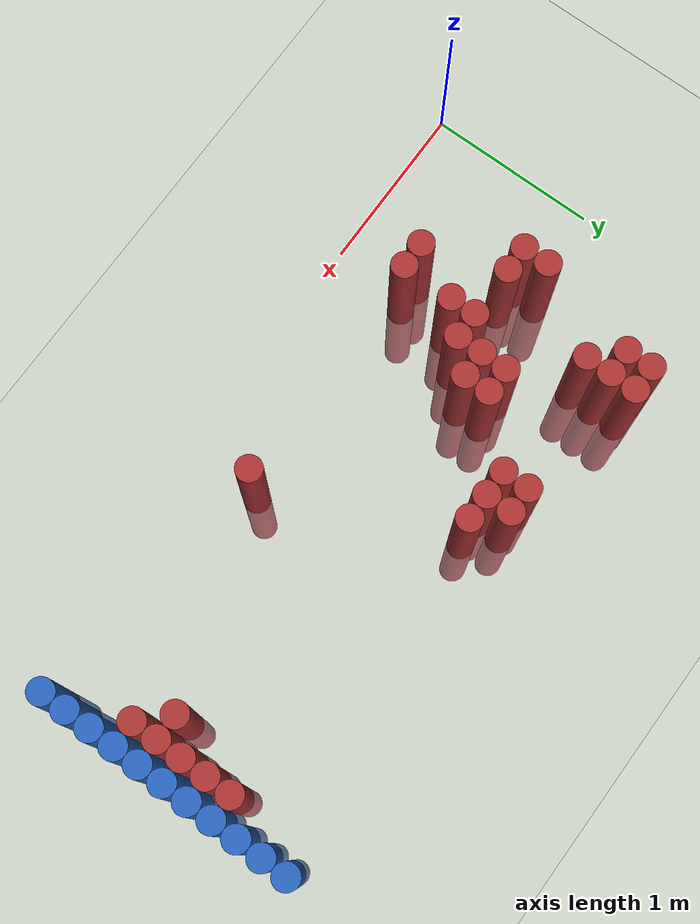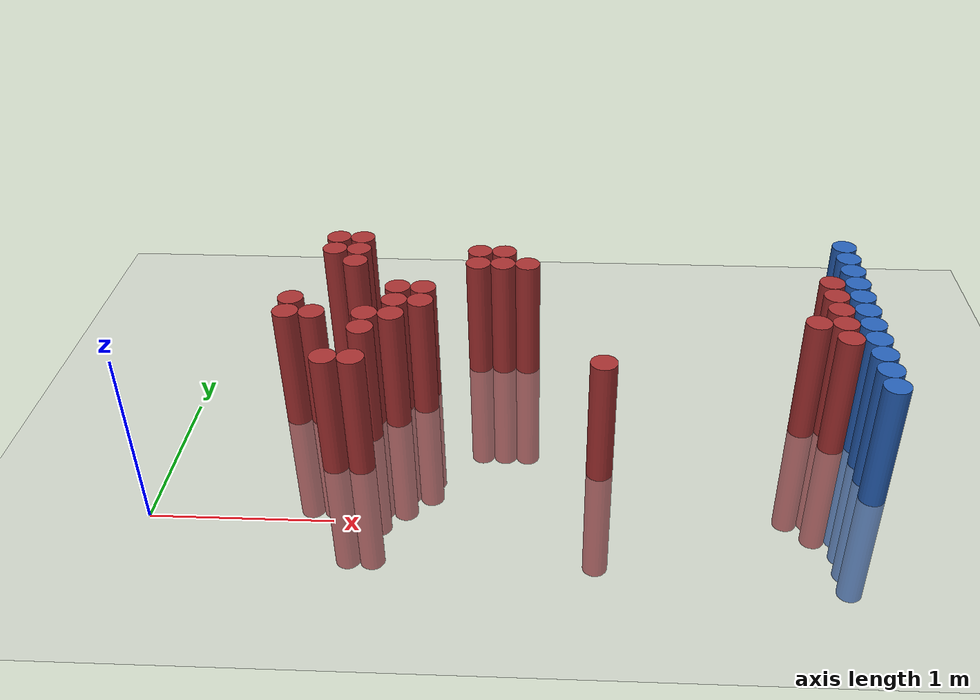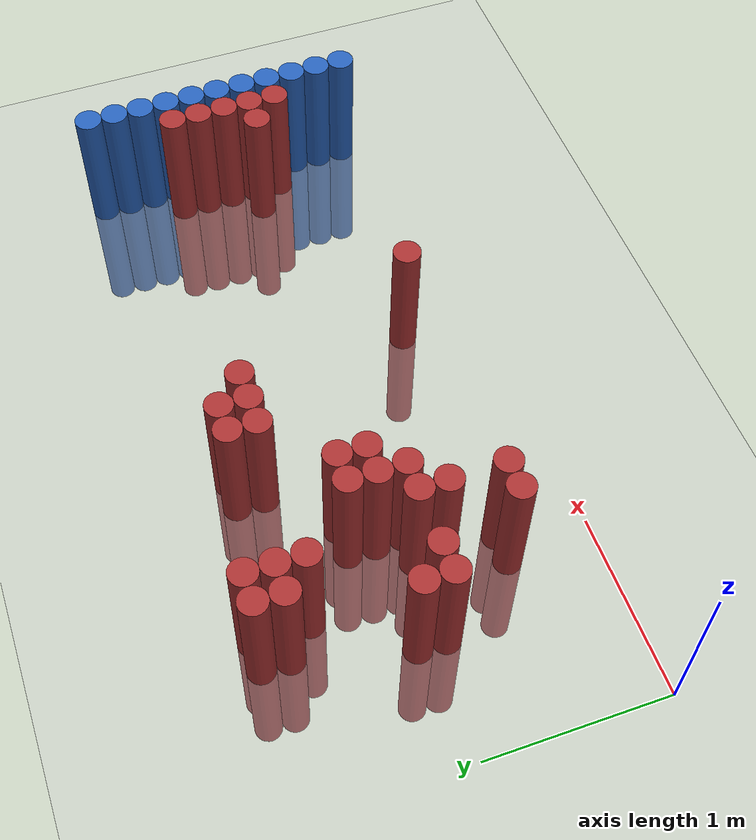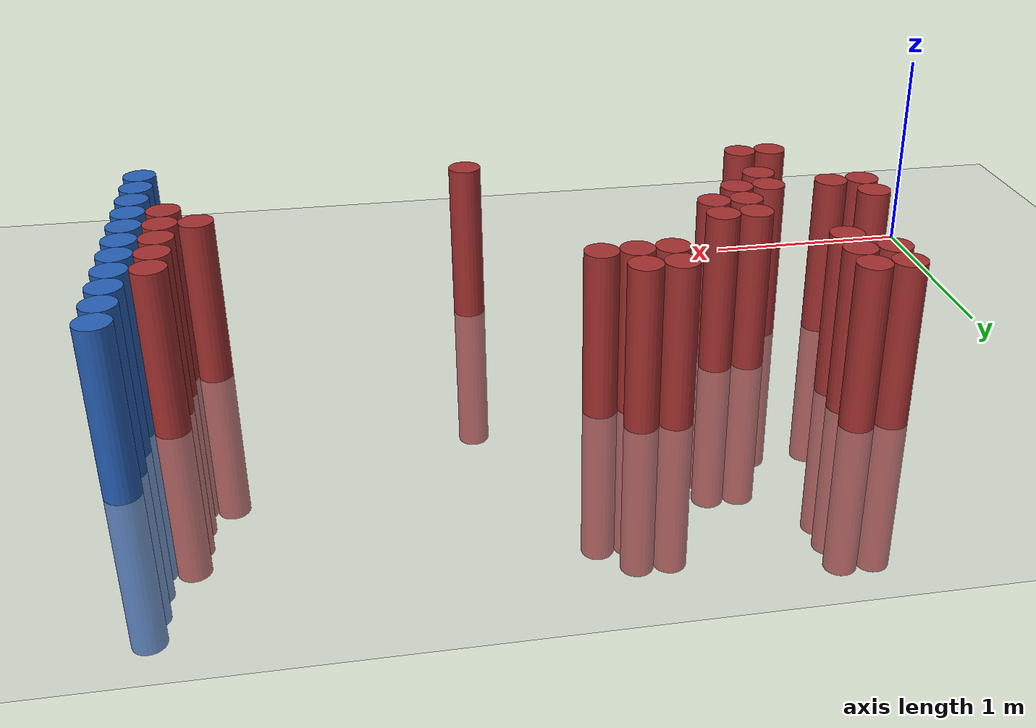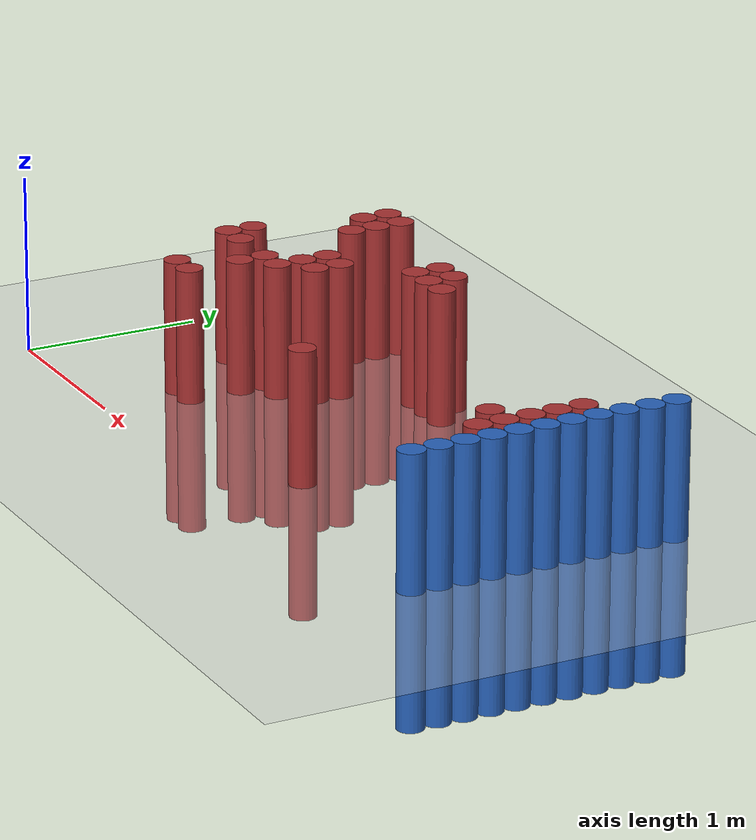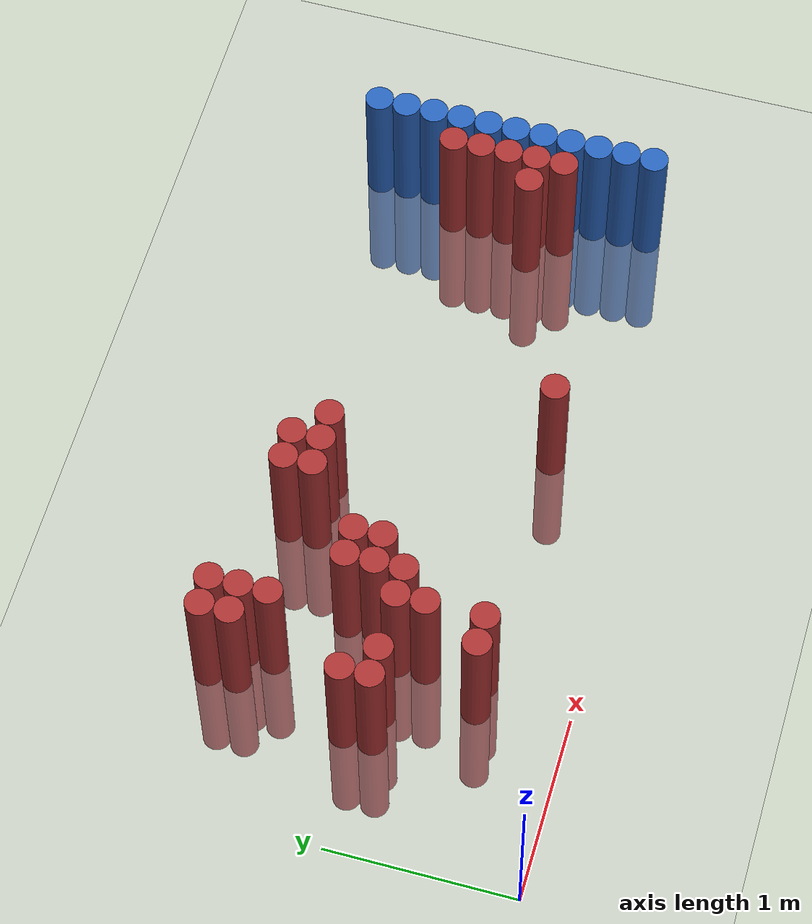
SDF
<sdf version="1.6">
 <world name="default">
  <model name="ground_plane">
   <static>1</static>
   <link name="link">
    <collision name="collision">
     <geometry><plane><normal>0 0 1</normal><size>100 100</size></plane></geometry>
     <surface><friction><ode><mu>100</mu><mu2>50</mu2></ode></friction></surface>
    </collision>
    <visual name="visual">
     <cast_shadows>0</cast_shadows>
     <geometry><plane><normal>0 0 1</normal><size>100 100</size></plane></geometry>
     <material>
      <script><uri>file://media/materials/scripts/gazebo.material</uri><name>Gazebo/Grey</name></script>
     </material>
    </visual>
   </link>
  </model>
  <model name="unit_cylinder_120">
   <static>1</static>
   <pose>3.925000 0.475000 0.000000 0.000000 0.000000 0.000000</pose>
   <link name="link">
    <inertial>
     <mass>1</mass>
     <inertia><ixx>0.145833</ixx><ixy>0</ixy><ixz>0</ixz><iyy>0.145833</iyy><iyz>0</iyz><izz>0.125</izz></inertia>
    </inertial>
    <collision name="collision">
     <geometry><cylinder><radius>0.075000</radius><length>1.5</length></cylinder></geometry>
    </collision>
    <visual name="visual">
     <geometry><cylinder><radius>0.075000</radius><length>1.5</length></cylinder></geometry>
     <material>
      <ambient>0.152000 0.379000 0.720000 1</ambient>
      <diffuse>0.152000 0.379000 0.720000 1</diffuse>
     </material>
     <material>
      <script><name>Gazebo/Grey</name><uri>file://media/materials/scripts/gazebo.material</uri></script>
     </material>
    </visual>
   </link>
  </model>
  <model name="unit_cylinder_122">
   <static>1</static>
   <pose>3.925000 0.625000 0.000000 0.000000 0.000000 0.000000</pose>
   <link name="link">
    <inertial>
     <mass>1</mass>
     <inertia><ixx>0.145833</ixx><ixy>0</ixy><ixz>0</ixz><iyy>0.145833</iyy><iyz>0</iyz><izz>0.125</izz></inertia>
    </inertial>
    <collision name="collision">
     <geometry><cylinder><radius>0.075000</radius><length>1.5</length></cylinder></geometry>
    </collision>
    <visual name="visual">
     <geometry><cylinder><radius>0.075000</radius><length>1.5</length></cylinder></geometry>
     <material>
      <ambient>0.152000 0.379000 0.720000 1</ambient>
      <diffuse>0.152000 0.379000 0.720000 1</diffuse>
     </material>
     <material>
      <script><name>Gazebo/Grey</name><uri>file://media/materials/scripts/gazebo.material</uri></script>
     </material>
    </visual>
   </link>
  </model>
  <model name="unit_cylinder_124">
   <static>1</static>
   <pose>3.925000 0.775000 0.000000 0.000000 0.000000 0.000000</pose>
   <link name="link">
    <inertial>
     <mass>1</mass>
     <inertia><ixx>0.145833</ixx><ixy>0</ixy><ixz>0</ixz><iyy>0.145833</iyy><iyz>0</iyz><izz>0.125</izz></inertia>
    </inertial>
    <collision name="collision">
     <geometry><cylinder><radius>0.075000</radius><length>1.5</length></cylinder></geometry>
    </collision>
    <visual name="visual">
     <geometry><cylinder><radius>0.075000</radius><length>1.5</length></cylinder></geometry>
     <material>
      <ambient>0.152000 0.379000 0.720000 1</ambient>
      <diffuse>0.152000 0.379000 0.720000 1</diffuse>
     </material>
     <material>
      <script><name>Gazebo/Grey</name><uri>file://media/materials/scripts/gazebo.material</uri></script>
     </material>
    </visual>
   </link>
  </model>
  <model name="unit_cylinder_126">
   <static>1</static>
   <pose>3.925000 0.925000 0.000000 0.000000 0.000000 0.000000</pose>
   <link name="link">
    <inertial>
     <mass>1</mass>
     <inertia><ixx>0.145833</ixx><ixy>0</ixy><ixz>0</ixz><iyy>0.145833</iyy><iyz>0</iyz><izz>0.125</izz></inertia>
    </inertial>
    <collision name="collision">
     <geometry><cylinder><radius>0.075000</radius><length>1.5</length></cylinder></geometry>
    </collision>
    <visual name="visual">
     <geometry><cylinder><radius>0.075000</radius><length>1.5</length></cylinder></geometry>
     <material>
      <ambient>0.152000 0.379000 0.720000 1</ambient>
      <diffuse>0.152000 0.379000 0.720000 1</diffuse>
     </material>
     <material>
      <script><name>Gazebo/Grey</name><uri>file://media/materials/scripts/gazebo.material</uri></script>
     </material>
    </visual>
   </link>
  </model>
  <model name="unit_cylinder_128">
   <static>1</static>
   <pose>3.925000 1.075000 0.000000 0.000000 0.000000 0.000000</pose>
   <link name="link">
    <inertial>
     <mass>1</mass>
     <inertia><ixx>0.145833</ixx><ixy>0</ixy><ixz>0</ixz><iyy>0.145833</iyy><iyz>0</iyz><izz>0.125</izz></inertia>
    </inertial>
    <collision name="collision">
     <geometry><cylinder><radius>0.075000</radius><length>1.5</length></cylinder></geometry>
    </collision>
    <visual name="visual">
     <geometry><cylinder><radius>0.075000</radius><length>1.5</length></cylinder></geometry>
     <material>
      <ambient>0.152000 0.379000 0.720000 1</ambient>
      <diffuse>0.152000 0.379000 0.720000 1</diffuse>
     </material>
     <material>
      <script><name>Gazebo/Grey</name><uri>file://media/materials/scripts/gazebo.material</uri></script>
     </material>
    </visual>
   </link>
  </model>
  <model name="unit_cylinder_130">
   <static>1</static>
   <pose>3.925000 1.225000 0.000000 0.000000 0.000000 0.000000</pose>
   <link name="link">
    <inertial>
     <mass>1</mass>
     <inertia><ixx>0.145833</ixx><ixy>0</ixy><ixz>0</ixz><iyy>0.145833</iyy><iyz>0</iyz><izz>0.125</izz></inertia>
    </inertial>
    <collision name="collision">
     <geometry><cylinder><radius>0.075000</radius><length>1.5</length></cylinder></geometry>
    </collision>
    <visual name="visual">
     <geometry><cylinder><radius>0.075000</radius><length>1.5</length></cylinder></geometry>
     <material>
      <ambient>0.152000 0.379000 0.720000 1</ambient>
      <diffuse>0.152000 0.379000 0.720000 1</diffuse>
     </material>
     <material>
      <script><name>Gazebo/Grey</name><uri>file://media/materials/scripts/gazebo.material</uri></script>
     </material>
    </visual>
   </link>
  </model>
  <model name="unit_cylinder_132">
   <static>1</static>
   <pose>3.925000 1.375000 0.000000 0.000000 0.000000 0.000000</pose>
   <link name="link">
    <inertial>
     <mass>1</mass>
     <inertia><ixx>0.145833</ixx><ixy>0</ixy><ixz>0</ixz><iyy>0.145833</iyy><iyz>0</iyz><izz>0.125</izz></inertia>
    </inertial>
    <collision name="collision">
     <geometry><cylinder><radius>0.075000</radius><length>1.5</length></cylinder></geometry>
    </collision>
    <visual name="visual">
     <geometry><cylinder><radius>0.075000</radius><length>1.5</length></cylinder></geometry>
     <material>
      <ambient>0.152000 0.379000 0.720000 1</ambient>
      <diffuse>0.152000 0.379000 0.720000 1</diffuse>
     </material>
     <material>
      <script><name>Gazebo/Grey</name><uri>file://media/materials/scripts/gazebo.material</uri></script>
     </material>
    </visual>
   </link>
  </model>
  <model name="unit_cylinder_134">
   <static>1</static>
   <pose>3.925000 1.525000 0.000000 0.000000 0.000000 0.000000</pose>
   <link name="link">
    <inertial>
     <mass>1</mass>
     <inertia><ixx>0.145833</ixx><ixy>0</ixy><ixz>0</ixz><iyy>0.145833</iyy><iyz>0</iyz><izz>0.125</izz></inertia>
    </inertial>
    <collision name="collision">
     <geometry><cylinder><radius>0.075000</radius><length>1.5</length></cylinder></geometry>
    </collision>
    <visual name="visual">
     <geometry><cylinder><radius>0.075000</radius><length>1.5</length></cylinder></geometry>
     <material>
      <ambient>0.152000 0.379000 0.720000 1</ambient>
      <diffuse>0.152000 0.379000 0.720000 1</diffuse>
     </material>
     <material>
      <script><name>Gazebo/Grey</name><uri>file://media/materials/scripts/gazebo.material</uri></script>
     </material>
    </visual>
   </link>
  </model>
  <model name="unit_cylinder_136">
   <static>1</static>
   <pose>3.925000 1.675000 0.000000 0.000000 0.000000 0.000000</pose>
   <link name="link">
    <inertial>
     <mass>1</mass>
     <inertia><ixx>0.145833</ixx><ixy>0</ixy><ixz>0</ixz><iyy>0.145833</iyy><iyz>0</iyz><izz>0.125</izz></inertia>
    </inertial>
    <collision name="collision">
     <geometry><cylinder><radius>0.075000</radius><length>1.5</length></cylinder></geometry>
    </collision>
    <visual name="visual">
     <geometry><cylinder><radius>0.075000</radius><length>1.5</length></cylinder></geometry>
     <material>
      <ambient>0.152000 0.379000 0.720000 1</ambient>
      <diffuse>0.152000 0.379000 0.720000 1</diffuse>
     </material>
     <material>
      <script><name>Gazebo/Grey</name><uri>file://media/materials/scripts/gazebo.material</uri></script>
     </material>
    </visual>
   </link>
  </model>
  <model name="unit_cylinder_138">
   <static>1</static>
   <pose>3.925000 1.825000 0.000000 0.000000 0.000000 0.000000</pose>
   <link name="link">
    <inertial>
     <mass>1</mass>
     <inertia><ixx>0.145833</ixx><ixy>0</ixy><ixz>0</ixz><iyy>0.145833</iyy><iyz>0</iyz><izz>0.125</izz></inertia>
    </inertial>
    <collision name="collision">
     <geometry><cylinder><radius>0.075000</radius><length>1.5</length></cylinder></geometry>
    </collision>
    <visual name="visual">
     <geometry><cylinder><radius>0.075000</radius><length>1.5</length></cylinder></geometry>
     <material>
      <ambient>0.152000 0.379000 0.720000 1</ambient>
      <diffuse>0.152000 0.379000 0.720000 1</diffuse>
     </material>
     <material>
      <script><name>Gazebo/Grey</name><uri>file://media/materials/scripts/gazebo.material</uri></script>
     </material>
    </visual>
   </link>
  </model>
  <model name="unit_cylinder_311">
   <static>1</static>
   <pose>0.625000 0.925000 0.000000 0.000000 0.000000 0.000000</pose>
   <link name="link">
    <inertial>
     <mass>1</mass>
     <inertia><ixx>0.145833</ixx><ixy>0</ixy><ixz>0</ixz><iyy>0.145833</iyy><iyz>0</iyz><izz>0.125</izz></inertia>
    </inertial>
    <collision name="collision">
     <geometry><cylinder><radius>0.075000</radius><length>1.5</length></cylinder></geometry>
    </collision>
    <visual name="visual">
     <geometry><cylinder><radius>0.075000</radius><length>1.5</length></cylinder></geometry>
     <material>
      <ambient>0.648000 0.192000 0.192000 1</ambient>
      <diffuse>0.648000 0.192000 0.192000 1</diffuse>
     </material>
     <material>
      <script><name>Gazebo/Grey</name><uri>file://media/materials/scripts/gazebo.material</uri></script>
     </material>
    </visual>
   </link>
  </model>
  <model name="unit_cylinder_312">
   <static>1</static>
   <pose>0.625000 1.075000 0.000000 0.000000 0.000000 0.000000</pose>
   <link name="link">
    <inertial>
     <mass>1</mass>
     <inertia><ixx>0.145833</ixx><ixy>0</ixy><ixz>0</ixz><iyy>0.145833</iyy><iyz>0</iyz><izz>0.125</izz></inertia>
    </inertial>
    <collision name="collision">
     <geometry><cylinder><radius>0.075000</radius><length>1.5</length></cylinder></geometry>
    </collision>
    <visual name="visual">
     <geometry><cylinder><radius>0.075000</radius><length>1.5</length></cylinder></geometry>
     <material>
      <ambient>0.648000 0.192000 0.192000 1</ambient>
      <diffuse>0.648000 0.192000 0.192000 1</diffuse>
     </material>
     <material>
      <script><name>Gazebo/Grey</name><uri>file://media/materials/scripts/gazebo.material</uri></script>
     </material>
    </visual>
   </link>
  </model>
  <model name="unit_cylinder_314">
   <static>1</static>
   <pose>0.775000 0.925000 0.000000 0.000000 0.000000 0.000000</pose>
   <link name="link">
    <inertial>
     <mass>1</mass>
     <inertia><ixx>0.145833</ixx><ixy>0</ixy><ixz>0</ixz><iyy>0.145833</iyy><iyz>0</iyz><izz>0.125</izz></inertia>
    </inertial>
    <collision name="collision">
     <geometry><cylinder><radius>0.075000</radius><length>1.5</length></cylinder></geometry>
    </collision>
    <visual name="visual">
     <geometry><cylinder><radius>0.075000</radius><length>1.5</length></cylinder></geometry>
     <material>
      <ambient>0.648000 0.192000 0.192000 1</ambient>
      <diffuse>0.648000 0.192000 0.192000 1</diffuse>
     </material>
     <material>
      <script><name>Gazebo/Grey</name><uri>file://media/materials/scripts/gazebo.material</uri></script>
     </material>
    </visual>
   </link>
  </model>
  <model name="unit_cylinder_315">
   <static>1</static>
   <pose>0.775000 1.675000 0.000000 0.000000 0.000000 0.000000</pose>
   <link name="link">
    <inertial>
     <mass>1</mass>
     <inertia><ixx>0.145833</ixx><ixy>0</ixy><ixz>0</ixz><iyy>0.145833</iyy><iyz>0</iyz><izz>0.125</izz></inertia>
    </inertial>
    <collision name="collision">
     <geometry><cylinder><radius>0.075000</radius><length>1.5</length></cylinder></geometry>
    </collision>
    <visual name="visual">
     <geometry><cylinder><radius>0.075000</radius><length>1.5</length></cylinder></geometry>
     <material>
      <ambient>0.648000 0.192000 0.192000 1</ambient>
      <diffuse>0.648000 0.192000 0.192000 1</diffuse>
     </material>
     <material>
      <script><name>Gazebo/Grey</name><uri>file://media/materials/scripts/gazebo.material</uri></script>
     </material>
    </visual>
   </link>
  </model>
  <model name="unit_cylinder_316">
   <static>1</static>
   <pose>0.775000 1.825000 0.000000 0.000000 0.000000 0.000000</pose>
   <link name="link">
    <inertial>
     <mass>1</mass>
     <inertia><ixx>0.145833</ixx><ixy>0</ixy><ixz>0</ixz><iyy>0.145833</iyy><iyz>0</iyz><izz>0.125</izz></inertia>
    </inertial>
    <collision name="collision">
     <geometry><cylinder><radius>0.075000</radius><length>1.5</length></cylinder></geometry>
    </collision>
    <visual name="visual">
     <geometry><cylinder><radius>0.075000</radius><length>1.5</length></cylinder></geometry>
     <material>
      <ambient>0.648000 0.192000 0.192000 1</ambient>
      <diffuse>0.648000 0.192000 0.192000 1</diffuse>
     </material>
     <material>
      <script><name>Gazebo/Grey</name><uri>file://media/materials/scripts/gazebo.material</uri></script>
     </material>
    </visual>
   </link>
  </model>
  <model name="unit_cylinder_320">
   <static>1</static>
   <pose>0.925000 0.475000 0.000000 0.000000 0.000000 0.000000</pose>
   <link name="link">
    <inertial>
     <mass>1</mass>
     <inertia><ixx>0.145833</ixx><ixy>0</ixy><ixz>0</ixz><iyy>0.145833</iyy><iyz>0</iyz><izz>0.125</izz></inertia>
    </inertial>
    <collision name="collision">
     <geometry><cylinder><radius>0.075000</radius><length>1.5</length></cylinder></geometry>
    </collision>
    <visual name="visual">
     <geometry><cylinder><radius>0.075000</radius><length>1.5</length></cylinder></geometry>
     <material>
      <ambient>0.648000 0.192000 0.192000 1</ambient>
      <diffuse>0.648000 0.192000 0.192000 1</diffuse>
     </material>
     <material>
      <script><name>Gazebo/Grey</name><uri>file://media/materials/scripts/gazebo.material</uri></script>
     </material>
    </visual>
   </link>
  </model>
  <model name="unit_cylinder_321">
   <static>1</static>
   <pose>0.925000 1.525000 0.000000 0.000000 0.000000 0.000000</pose>
   <link name="link">
    <inertial>
     <mass>1</mass>
     <inertia><ixx>0.145833</ixx><ixy>0</ixy><ixz>0</ixz><iyy>0.145833</iyy><iyz>0</iyz><izz>0.125</izz></inertia>
    </inertial>
    <collision name="collision">
     <geometry><cylinder><radius>0.075000</radius><length>1.5</length></cylinder></geometry>
    </collision>
    <visual name="visual">
     <geometry><cylinder><radius>0.075000</radius><length>1.5</length></cylinder></geometry>
     <material>
      <ambient>0.648000 0.192000 0.192000 1</ambient>
      <diffuse>0.648000 0.192000 0.192000 1</diffuse>
     </material>
     <material>
      <script><name>Gazebo/Grey</name><uri>file://media/materials/scripts/gazebo.material</uri></script>
     </material>
    </visual>
   </link>
  </model>
  <model name="unit_cylinder_322">
   <static>1</static>
   <pose>0.925000 1.675000 0.000000 0.000000 0.000000 0.000000</pose>
   <link name="link">
    <inertial>
     <mass>1</mass>
     <inertia><ixx>0.145833</ixx><ixy>0</ixy><ixz>0</ixz><iyy>0.145833</iyy><iyz>0</iyz><izz>0.125</izz></inertia>
    </inertial>
    <collision name="collision">
     <geometry><cylinder><radius>0.075000</radius><length>1.5</length></cylinder></geometry>
    </collision>
    <visual name="visual">
     <geometry><cylinder><radius>0.075000</radius><length>1.5</length></cylinder></geometry>
     <material>
      <ambient>0.648000 0.192000 0.192000 1</ambient>
      <diffuse>0.648000 0.192000 0.192000 1</diffuse>
     </material>
     <material>
      <script><name>Gazebo/Grey</name><uri>file://media/materials/scripts/gazebo.material</uri></script>
     </material>
    </visual>
   </link>
  </model>
  <model name="unit_cylinder_323">
   <static>1</static>
   <pose>0.925000 1.825000 0.000000 0.000000 0.000000 0.000000</pose>
   <link name="link">
    <inertial>
     <mass>1</mass>
     <inertia><ixx>0.145833</ixx><ixy>0</ixy><ixz>0</ixz><iyy>0.145833</iyy><iyz>0</iyz><izz>0.125</izz></inertia>
    </inertial>
    <collision name="collision">
     <geometry><cylinder><radius>0.075000</radius><length>1.5</length></cylinder></geometry>
    </collision>
    <visual name="visual">
     <geometry><cylinder><radius>0.075000</radius><length>1.5</length></cylinder></geometry>
     <material>
      <ambient>0.648000 0.192000 0.192000 1</ambient>
      <diffuse>0.648000 0.192000 0.192000 1</diffuse>
     </material>
     <material>
      <script><name>Gazebo/Grey</name><uri>file://media/materials/scripts/gazebo.material</uri></script>
     </material>
    </visual>
   </link>
  </model>
  <model name="unit_cylinder_325">
   <static>1</static>
   <pose>1.075000 0.475000 0.000000 0.000000 0.000000 0.000000</pose>
   <link name="link">
    <inertial>
     <mass>1</mass>
     <inertia><ixx>0.145833</ixx><ixy>0</ixy><ixz>0</ixz><iyy>0.145833</iyy><iyz>0</iyz><izz>0.125</izz></inertia>
    </inertial>
    <collision name="collision">
     <geometry><cylinder><radius>0.075000</radius><length>1.5</length></cylinder></geometry>
    </collision>
    <visual name="visual">
     <geometry><cylinder><radius>0.075000</radius><length>1.5</length></cylinder></geometry>
     <material>
      <ambient>0.648000 0.192000 0.192000 1</ambient>
      <diffuse>0.648000 0.192000 0.192000 1</diffuse>
     </material>
     <material>
      <script><name>Gazebo/Grey</name><uri>file://media/materials/scripts/gazebo.material</uri></script>
     </material>
    </visual>
   </link>
  </model>
  <model name="unit_cylinder_326">
   <static>1</static>
   <pose>1.075000 0.775000 0.000000 0.000000 0.000000 0.000000</pose>
   <link name="link">
    <inertial>
     <mass>1</mass>
     <inertia><ixx>0.145833</ixx><ixy>0</ixy><ixz>0</ixz><iyy>0.145833</iyy><iyz>0</iyz><izz>0.125</izz></inertia>
    </inertial>
    <collision name="collision">
     <geometry><cylinder><radius>0.075000</radius><length>1.5</length></cylinder></geometry>
    </collision>
    <visual name="visual">
     <geometry><cylinder><radius>0.075000</radius><length>1.5</length></cylinder></geometry>
     <material>
      <ambient>0.648000 0.192000 0.192000 1</ambient>
      <diffuse>0.648000 0.192000 0.192000 1</diffuse>
     </material>
     <material>
      <script><name>Gazebo/Grey</name><uri>file://media/materials/scripts/gazebo.material</uri></script>
     </material>
    </visual>
   </link>
  </model>
  <model name="unit_cylinder_327">
   <static>1</static>
   <pose>1.075000 0.925000 0.000000 0.000000 0.000000 0.000000</pose>
   <link name="link">
    <inertial>
     <mass>1</mass>
     <inertia><ixx>0.145833</ixx><ixy>0</ixy><ixz>0</ixz><iyy>0.145833</iyy><iyz>0</iyz><izz>0.125</izz></inertia>
    </inertial>
    <collision name="collision">
     <geometry><cylinder><radius>0.075000</radius><length>1.5</length></cylinder></geometry>
    </collision>
    <visual name="visual">
     <geometry><cylinder><radius>0.075000</radius><length>1.5</length></cylinder></geometry>
     <material>
      <ambient>0.648000 0.192000 0.192000 1</ambient>
      <diffuse>0.648000 0.192000 0.192000 1</diffuse>
     </material>
     <material>
      <script><name>Gazebo/Grey</name><uri>file://media/materials/scripts/gazebo.material</uri></script>
     </material>
    </visual>
   </link>
  </model>
  <model name="unit_cylinder_330">
   <static>1</static>
   <pose>1.225000 0.925000 0.000000 0.000000 0.000000 0.000000</pose>
   <link name="link">
    <inertial>
     <mass>1</mass>
     <inertia><ixx>0.145833</ixx><ixy>0</ixy><ixz>0</ixz><iyy>0.145833</iyy><iyz>0</iyz><izz>0.125</izz></inertia>
    </inertial>
    <collision name="collision">
     <geometry><cylinder><radius>0.075000</radius><length>1.5</length></cylinder></geometry>
    </collision>
    <visual name="visual">
     <geometry><cylinder><radius>0.075000</radius><length>1.5</length></cylinder></geometry>
     <material>
      <ambient>0.648000 0.192000 0.192000 1</ambient>
      <diffuse>0.648000 0.192000 0.192000 1</diffuse>
     </material>
     <material>
      <script><name>Gazebo/Grey</name><uri>file://media/materials/scripts/gazebo.material</uri></script>
     </material>
    </visual>
   </link>
  </model>
  <model name="unit_cylinder_331">
   <static>1</static>
   <pose>1.225000 1.075000 0.000000 0.000000 0.000000 0.000000</pose>
   <link name="link">
    <inertial>
     <mass>1</mass>
     <inertia><ixx>0.145833</ixx><ixy>0</ixy><ixz>0</ixz><iyy>0.145833</iyy><iyz>0</iyz><izz>0.125</izz></inertia>
    </inertial>
    <collision name="collision">
     <geometry><cylinder><radius>0.075000</radius><length>1.5</length></cylinder></geometry>
    </collision>
    <visual name="visual">
     <geometry><cylinder><radius>0.075000</radius><length>1.5</length></cylinder></geometry>
     <material>
      <ambient>0.648000 0.192000 0.192000 1</ambient>
      <diffuse>0.648000 0.192000 0.192000 1</diffuse>
     </material>
     <material>
      <script><name>Gazebo/Grey</name><uri>file://media/materials/scripts/gazebo.material</uri></script>
     </material>
    </visual>
   </link>
  </model>
  <model name="unit_cylinder_332">
   <static>1</static>
   <pose>1.225000 1.225000 0.000000 0.000000 0.000000 0.000000</pose>
   <link name="link">
    <inertial>
     <mass>1</mass>
     <inertia><ixx>0.145833</ixx><ixy>0</ixy><ixz>0</ixz><iyy>0.145833</iyy><iyz>0</iyz><izz>0.125</izz></inertia>
    </inertial>
    <collision name="collision">
     <geometry><cylinder><radius>0.075000</radius><length>1.5</length></cylinder></geometry>
    </collision>
    <visual name="visual">
     <geometry><cylinder><radius>0.075000</radius><length>1.5</length></cylinder></geometry>
     <material>
      <ambient>0.648000 0.192000 0.192000 1</ambient>
      <diffuse>0.648000 0.192000 0.192000 1</diffuse>
     </material>
     <material>
      <script><name>Gazebo/Grey</name><uri>file://media/materials/scripts/gazebo.material</uri></script>
     </material>
    </visual>
   </link>
  </model>
  <model name="unit_cylinder_336">
   <static>1</static>
   <pose>1.375000 1.075000 0.000000 0.000000 0.000000 0.000000</pose>
   <link name="link">
    <inertial>
     <mass>1</mass>
     <inertia><ixx>0.145833</ixx><ixy>0</ixy><ixz>0</ixz><iyy>0.145833</iyy><iyz>0</iyz><izz>0.125</izz></inertia>
    </inertial>
    <collision name="collision">
     <geometry><cylinder><radius>0.075000</radius><length>1.5</length></cylinder></geometry>
    </collision>
    <visual name="visual">
     <geometry><cylinder><radius>0.075000</radius><length>1.5</length></cylinder></geometry>
     <material>
      <ambient>0.648000 0.192000 0.192000 1</ambient>
      <diffuse>0.648000 0.192000 0.192000 1</diffuse>
     </material>
     <material>
      <script><name>Gazebo/Grey</name><uri>file://media/materials/scripts/gazebo.material</uri></script>
     </material>
    </visual>
   </link>
  </model>
  <model name="unit_cylinder_337">
   <static>1</static>
   <pose>1.375000 1.225000 0.000000 0.000000 0.000000 0.000000</pose>
   <link name="link">
    <inertial>
     <mass>1</mass>
     <inertia><ixx>0.145833</ixx><ixy>0</ixy><ixz>0</ixz><iyy>0.145833</iyy><iyz>0</iyz><izz>0.125</izz></inertia>
    </inertial>
    <collision name="collision">
     <geometry><cylinder><radius>0.075000</radius><length>1.5</length></cylinder></geometry>
    </collision>
    <visual name="visual">
     <geometry><cylinder><radius>0.075000</radius><length>1.5</length></cylinder></geometry>
     <material>
      <ambient>0.648000 0.192000 0.192000 1</ambient>
      <diffuse>0.648000 0.192000 0.192000 1</diffuse>
     </material>
     <material>
      <script><name>Gazebo/Grey</name><uri>file://media/materials/scripts/gazebo.material</uri></script>
     </material>
    </visual>
   </link>
  </model>
  <model name="unit_cylinder_339">
   <static>1</static>
   <pose>1.675000 1.525000 0.000000 0.000000 0.000000 0.000000</pose>
   <link name="link">
    <inertial>
     <mass>1</mass>
     <inertia><ixx>0.145833</ixx><ixy>0</ixy><ixz>0</ixz><iyy>0.145833</iyy><iyz>0</iyz><izz>0.125</izz></inertia>
    </inertial>
    <collision name="collision">
     <geometry><cylinder><radius>0.075000</radius><length>1.5</length></cylinder></geometry>
    </collision>
    <visual name="visual">
     <geometry><cylinder><radius>0.075000</radius><length>1.5</length></cylinder></geometry>
     <material>
      <ambient>0.648000 0.192000 0.192000 1</ambient>
      <diffuse>0.648000 0.192000 0.192000 1</diffuse>
     </material>
     <material>
      <script><name>Gazebo/Grey</name><uri>file://media/materials/scripts/gazebo.material</uri></script>
     </material>
    </visual>
   </link>
  </model>
  <model name="unit_cylinder_340">
   <static>1</static>
   <pose>1.675000 1.675000 0.000000 0.000000 0.000000 0.000000</pose>
   <link name="link">
    <inertial>
     <mass>1</mass>
     <inertia><ixx>0.145833</ixx><ixy>0</ixy><ixz>0</ixz><iyy>0.145833</iyy><iyz>0</iyz><izz>0.125</izz></inertia>
    </inertial>
    <collision name="collision">
     <geometry><cylinder><radius>0.075000</radius><length>1.5</length></cylinder></geometry>
    </collision>
    <visual name="visual">
     <geometry><cylinder><radius>0.075000</radius><length>1.5</length></cylinder></geometry>
     <material>
      <ambient>0.648000 0.192000 0.192000 1</ambient>
      <diffuse>0.648000 0.192000 0.192000 1</diffuse>
     </material>
     <material>
      <script><name>Gazebo/Grey</name><uri>file://media/materials/scripts/gazebo.material</uri></script>
     </material>
    </visual>
   </link>
  </model>
  <model name="unit_cylinder_341">
   <static>1</static>
   <pose>1.825000 1.525000 0.000000 0.000000 0.000000 0.000000</pose>
   <link name="link">
    <inertial>
     <mass>1</mass>
     <inertia><ixx>0.145833</ixx><ixy>0</ixy><ixz>0</ixz><iyy>0.145833</iyy><iyz>0</iyz><izz>0.125</izz></inertia>
    </inertial>
    <collision name="collision">
     <geometry><cylinder><radius>0.075000</radius><length>1.5</length></cylinder></geometry>
    </collision>
    <visual name="visual">
     <geometry><cylinder><radius>0.075000</radius><length>1.5</length></cylinder></geometry>
     <material>
      <ambient>0.648000 0.192000 0.192000 1</ambient>
      <diffuse>0.648000 0.192000 0.192000 1</diffuse>
     </material>
     <material>
      <script><name>Gazebo/Grey</name><uri>file://media/materials/scripts/gazebo.material</uri></script>
     </material>
    </visual>
   </link>
  </model>
  <model name="unit_cylinder_342">
   <static>1</static>
   <pose>1.825000 1.675000 0.000000 0.000000 0.000000 0.000000</pose>
   <link name="link">
    <inertial>
     <mass>1</mass>
     <inertia><ixx>0.145833</ixx><ixy>0</ixy><ixz>0</ixz><iyy>0.145833</iyy><iyz>0</iyz><izz>0.125</izz></inertia>
    </inertial>
    <collision name="collision">
     <geometry><cylinder><radius>0.075000</radius><length>1.5</length></cylinder></geometry>
    </collision>
    <visual name="visual">
     <geometry><cylinder><radius>0.075000</radius><length>1.5</length></cylinder></geometry>
     <material>
      <ambient>0.648000 0.192000 0.192000 1</ambient>
      <diffuse>0.648000 0.192000 0.192000 1</diffuse>
     </material>
     <material>
      <script><name>Gazebo/Grey</name><uri>file://media/materials/scripts/gazebo.material</uri></script>
     </material>
    </visual>
   </link>
  </model>
  <model name="unit_cylinder_347">
   <static>1</static>
   <pose>1.975000 1.525000 0.000000 0.000000 0.000000 0.000000</pose>
   <link name="link">
    <inertial>
     <mass>1</mass>
     <inertia><ixx>0.145833</ixx><ixy>0</ixy><ixz>0</ixz><iyy>0.145833</iyy><iyz>0</iyz><izz>0.125</izz></inertia>
    </inertial>
    <collision name="collision">
     <geometry><cylinder><radius>0.075000</radius><length>1.5</length></cylinder></geometry>
    </collision>
    <visual name="visual">
     <geometry><cylinder><radius>0.075000</radius><length>1.5</length></cylinder></geometry>
     <material>
      <ambient>0.648000 0.192000 0.192000 1</ambient>
      <diffuse>0.648000 0.192000 0.192000 1</diffuse>
     </material>
     <material>
      <script><name>Gazebo/Grey</name><uri>file://media/materials/scripts/gazebo.material</uri></script>
     </material>
    </visual>
   </link>
  </model>
  <model name="unit_cylinder_362">
   <static>1</static>
   <pose>2.425000 0.475000 0.000000 0.000000 0.000000 0.000000</pose>
   <link name="link">
    <inertial>
     <mass>1</mass>
     <inertia><ixx>0.145833</ixx><ixy>0</ixy><ixz>0</ixz><iyy>0.145833</iyy><iyz>0</iyz><izz>0.125</izz></inertia>
    </inertial>
    <collision name="collision">
     <geometry><cylinder><radius>0.075000</radius><length>1.5</length></cylinder></geometry>
    </collision>
    <visual name="visual">
     <geometry><cylinder><radius>0.075000</radius><length>1.5</length></cylinder></geometry>
     <material>
      <ambient>0.648000 0.192000 0.192000 1</ambient>
      <diffuse>0.648000 0.192000 0.192000 1</diffuse>
     </material>
     <material>
      <script><name>Gazebo/Grey</name><uri>file://media/materials/scripts/gazebo.material</uri></script>
     </material>
    </visual>
   </link>
  </model>
  <model name="unit_cylinder_365">
   <static>1</static>
   <pose>3.625000 0.925000 0.000000 0.000000 0.000000 0.000000</pose>
   <link name="link">
    <inertial>
     <mass>1</mass>
     <inertia><ixx>0.145833</ixx><ixy>0</ixy><ixz>0</ixz><iyy>0.145833</iyy><iyz>0</iyz><izz>0.125</izz></inertia>
    </inertial>
    <collision name="collision">
     <geometry><cylinder><radius>0.075000</radius><length>1.5</length></cylinder></geometry>
    </collision>
    <visual name="visual">
     <geometry><cylinder><radius>0.075000</radius><length>1.5</length></cylinder></geometry>
     <material>
      <ambient>0.648000 0.192000 0.192000 1</ambient>
      <diffuse>0.648000 0.192000 0.192000 1</diffuse>
     </material>
     <material>
      <script><name>Gazebo/Grey</name><uri>file://media/materials/scripts/gazebo.material</uri></script>
     </material>
    </visual>
   </link>
  </model>
  <model name="unit_cylinder_376">
   <static>1</static>
   <pose>3.775000 0.775000 0.000000 0.000000 0.000000 0.000000</pose>
   <link name="link">
    <inertial>
     <mass>1</mass>
     <inertia><ixx>0.145833</ixx><ixy>0</ixy><ixz>0</ixz><iyy>0.145833</iyy><iyz>0</iyz><izz>0.125</izz></inertia>
    </inertial>
    <collision name="collision">
     <geometry><cylinder><radius>0.075000</radius><length>1.5</length></cylinder></geometry>
    </collision>
    <visual name="visual">
     <geometry><cylinder><radius>0.075000</radius><length>1.5</length></cylinder></geometry>
     <material>
      <ambient>0.648000 0.192000 0.192000 1</ambient>
      <diffuse>0.648000 0.192000 0.192000 1</diffuse>
     </material>
     <material>
      <script><name>Gazebo/Grey</name><uri>file://media/materials/scripts/gazebo.material</uri></script>
     </material>
    </visual>
   </link>
  </model>
  <model name="unit_cylinder_377">
   <static>1</static>
   <pose>3.775000 0.925000 0.000000 0.000000 0.000000 0.000000</pose>
   <link name="link">
    <inertial>
     <mass>1</mass>
     <inertia><ixx>0.145833</ixx><ixy>0</ixy><ixz>0</ixz><iyy>0.145833</iyy><iyz>0</iyz><izz>0.125</izz></inertia>
    </inertial>
    <collision name="collision">
     <geometry><cylinder><radius>0.075000</radius><length>1.5</length></cylinder></geometry>
    </collision>
    <visual name="visual">
     <geometry><cylinder><radius>0.075000</radius><length>1.5</length></cylinder></geometry>
     <material>
      <ambient>0.648000 0.192000 0.192000 1</ambient>
      <diffuse>0.648000 0.192000 0.192000 1</diffuse>
     </material>
     <material>
      <script><name>Gazebo/Grey</name><uri>file://media/materials/scripts/gazebo.material</uri></script>
     </material>
    </visual>
   </link>
  </model>
  <model name="unit_cylinder_378">
   <static>1</static>
   <pose>3.775000 1.075000 0.000000 0.000000 0.000000 0.000000</pose>
   <link name="link">
    <inertial>
     <mass>1</mass>
     <inertia><ixx>0.145833</ixx><ixy>0</ixy><ixz>0</ixz><iyy>0.145833</iyy><iyz>0</iyz><izz>0.125</izz></inertia>
    </inertial>
    <collision name="collision">
     <geometry><cylinder><radius>0.075000</radius><length>1.5</length></cylinder></geometry>
    </collision>
    <visual name="visual">
     <geometry><cylinder><radius>0.075000</radius><length>1.5</length></cylinder></geometry>
     <material>
      <ambient>0.648000 0.192000 0.192000 1</ambient>
      <diffuse>0.648000 0.192000 0.192000 1</diffuse>
     </material>
     <material>
      <script><name>Gazebo/Grey</name><uri>file://media/materials/scripts/gazebo.material</uri></script>
     </material>
    </visual>
   </link>
  </model>
  <model name="unit_cylinder_379">
   <static>1</static>
   <pose>3.775000 1.225000 0.000000 0.000000 0.000000 0.000000</pose>
   <link name="link">
    <inertial>
     <mass>1</mass>
     <inertia><ixx>0.145833</ixx><ixy>0</ixy><ixz>0</ixz><iyy>0.145833</iyy><iyz>0</iyz><izz>0.125</izz></inertia>
    </inertial>
    <collision name="collision">
     <geometry><cylinder><radius>0.075000</radius><length>1.5</length></cylinder></geometry>
    </collision>
    <visual name="visual">
     <geometry><cylinder><radius>0.075000</radius><length>1.5</length></cylinder></geometry>
     <material>
      <ambient>0.648000 0.192000 0.192000 1</ambient>
      <diffuse>0.648000 0.192000 0.192000 1</diffuse>
     </material>
     <material>
      <script><name>Gazebo/Grey</name><uri>file://media/materials/scripts/gazebo.material</uri></script>
     </material>
    </visual>
   </link>
  </model>
  <model name="unit_cylinder_380">
   <static>1</static>
   <pose>3.775000 1.375000 0.000000 0.000000 0.000000 0.000000</pose>
   <link name="link">
    <inertial>
     <mass>1</mass>
     <inertia><ixx>0.145833</ixx><ixy>0</ixy><ixz>0</ixz><iyy>0.145833</iyy><iyz>0</iyz><izz>0.125</izz></inertia>
    </inertial>
    <collision name="collision">
     <geometry><cylinder><radius>0.075000</radius><length>1.5</length></cylinder></geometry>
    </collision>
    <visual name="visual">
     <geometry><cylinder><radius>0.075000</radius><length>1.5</length></cylinder></geometry>
     <material>
      <ambient>0.648000 0.192000 0.192000 1</ambient>
      <diffuse>0.648000 0.192000 0.192000 1</diffuse>
     </material>
     <material>
      <script><name>Gazebo/Grey</name><uri>file://media/materials/scripts/gazebo.material</uri></script>
     </material>
    </visual>
   </link>
  </model>
  <model name="unit_cylinder_406">
   <static>1</static>
   <pose>3.925000 0.325000 0.000000 0.000000 0.000000 0.000000</pose>
   <link name="link">
    <inertial>
     <mass>1</mass>
     <inertia><ixx>0.145833</ixx><ixy>0</ixy><ixz>0</ixz><iyy>0.145833</iyy><iyz>0</iyz><izz>0.125</izz></inertia>
    </inertial>
    <collision name="collision">
     <geometry><cylinder><radius>0.075000</radius><length>1.5</length></cylinder></geometry>
    </collision>
    <visual name="visual">
     <geometry><cylinder><radius>0.075000</radius><length>1.5</length></cylinder></geometry>
     <material>
      <ambient>0.152000 0.379000 0.720000 1</ambient>
      <diffuse>0.152000 0.379000 0.720000 1</diffuse>
     </material>
     <material>
      <script><name>Gazebo/Grey</name><uri>file://media/materials/scripts/gazebo.material</uri></script>
     </material>
    </visual>
   </link>
  </model>
  <model name="unit_cylinder_407">
   <static>1</static>
   <pose>3.925000 0.475000 0.000000 0.000000 0.000000 0.000000</pose>
   <link name="link">
    <inertial>
     <mass>1</mass>
     <inertia><ixx>0.145833</ixx><ixy>0</ixy><ixz>0</ixz><iyy>0.145833</iyy><iyz>0</iyz><izz>0.125</izz></inertia>
    </inertial>
    <collision name="collision">
     <geometry><cylinder><radius>0.075000</radius><length>1.5</length></cylinder></geometry>
    </collision>
    <visual name="visual">
     <geometry><cylinder><radius>0.075000</radius><length>1.5</length></cylinder></geometry>
     <material>
      <ambient>0.152000 0.379000 0.720000 1</ambient>
      <diffuse>0.152000 0.379000 0.720000 1</diffuse>
     </material>
     <material>
      <script><name>Gazebo/Grey</name><uri>file://media/materials/scripts/gazebo.material</uri></script>
     </material>
    </visual>
   </link>
  </model>
  <model name="unit_cylinder_408">
   <static>1</static>
   <pose>3.925000 0.625000 0.000000 0.000000 0.000000 0.000000</pose>
   <link name="link">
    <inertial>
     <mass>1</mass>
     <inertia><ixx>0.145833</ixx><ixy>0</ixy><ixz>0</ixz><iyy>0.145833</iyy><iyz>0</iyz><izz>0.125</izz></inertia>
    </inertial>
    <collision name="collision">
     <geometry><cylinder><radius>0.075000</radius><length>1.5</length></cylinder></geometry>
    </collision>
    <visual name="visual">
     <geometry><cylinder><radius>0.075000</radius><length>1.5</length></cylinder></geometry>
     <material>
      <ambient>0.152000 0.379000 0.720000 1</ambient>
      <diffuse>0.152000 0.379000 0.720000 1</diffuse>
     </material>
     <material>
      <script><name>Gazebo/Grey</name><uri>file://media/materials/scripts/gazebo.material</uri></script>
     </material>
    </visual>
   </link>
  </model>
  <model name="unit_cylinder_409">
   <static>1</static>
   <pose>3.925000 0.775000 0.000000 0.000000 0.000000 0.000000</pose>
   <link name="link">
    <inertial>
     <mass>1</mass>
     <inertia><ixx>0.145833</ixx><ixy>0</ixy><ixz>0</ixz><iyy>0.145833</iyy><iyz>0</iyz><izz>0.125</izz></inertia>
    </inertial>
    <collision name="collision">
     <geometry><cylinder><radius>0.075000</radius><length>1.5</length></cylinder></geometry>
    </collision>
    <visual name="visual">
     <geometry><cylinder><radius>0.075000</radius><length>1.5</length></cylinder></geometry>
     <material>
      <ambient>0.152000 0.379000 0.720000 1</ambient>
      <diffuse>0.152000 0.379000 0.720000 1</diffuse>
     </material>
     <material>
      <script><name>Gazebo/Grey</name><uri>file://media/materials/scripts/gazebo.material</uri></script>
     </material>
    </visual>
   </link>
  </model>
  <model name="unit_cylinder_410">
   <static>1</static>
   <pose>3.925000 0.925000 0.000000 0.000000 0.000000 0.000000</pose>
   <link name="link">
    <inertial>
     <mass>1</mass>
     <inertia><ixx>0.145833</ixx><ixy>0</ixy><ixz>0</ixz><iyy>0.145833</iyy><iyz>0</iyz><izz>0.125</izz></inertia>
    </inertial>
    <collision name="collision">
     <geometry><cylinder><radius>0.075000</radius><length>1.5</length></cylinder></geometry>
    </collision>
    <visual name="visual">
     <geometry><cylinder><radius>0.075000</radius><length>1.5</length></cylinder></geometry>
     <material>
      <ambient>0.152000 0.379000 0.720000 1</ambient>
      <diffuse>0.152000 0.379000 0.720000 1</diffuse>
     </material>
     <material>
      <script><name>Gazebo/Grey</name><uri>file://media/materials/scripts/gazebo.material</uri></script>
     </material>
    </visual>
   </link>
  </model>
  <model name="unit_cylinder_411">
   <static>1</static>
   <pose>3.925000 1.075000 0.000000 0.000000 0.000000 0.000000</pose>
   <link name="link">
    <inertial>
     <mass>1</mass>
     <inertia><ixx>0.145833</ixx><ixy>0</ixy><ixz>0</ixz><iyy>0.145833</iyy><iyz>0</iyz><izz>0.125</izz></inertia>
    </inertial>
    <collision name="collision">
     <geometry><cylinder><radius>0.075000</radius><length>1.5</length></cylinder></geometry>
    </collision>
    <visual name="visual">
     <geometry><cylinder><radius>0.075000</radius><length>1.5</length></cylinder></geometry>
     <material>
      <ambient>0.152000 0.379000 0.720000 1</ambient>
      <diffuse>0.152000 0.379000 0.720000 1</diffuse>
     </material>
     <material>
      <script><name>Gazebo/Grey</name><uri>file://media/materials/scripts/gazebo.material</uri></script>
     </material>
    </visual>
   </link>
  </model>
  <model name="unit_cylinder_412">
   <static>1</static>
   <pose>3.925000 1.225000 0.000000 0.000000 0.000000 0.000000</pose>
   <link name="link">
    <inertial>
     <mass>1</mass>
     <inertia><ixx>0.145833</ixx><ixy>0</ixy><ixz>0</ixz><iyy>0.145833</iyy><iyz>0</iyz><izz>0.125</izz></inertia>
    </inertial>
    <collision name="collision">
     <geometry><cylinder><radius>0.075000</radius><length>1.5</length></cylinder></geometry>
    </collision>
    <visual name="visual">
     <geometry><cylinder><radius>0.075000</radius><length>1.5</length></cylinder></geometry>
     <material>
      <ambient>0.152000 0.379000 0.720000 1</ambient>
      <diffuse>0.152000 0.379000 0.720000 1</diffuse>
     </material>
     <material>
      <script><name>Gazebo/Grey</name><uri>file://media/materials/scripts/gazebo.material</uri></script>
     </material>
    </visual>
   </link>
  </model>
  <model name="unit_cylinder_413">
   <static>1</static>
   <pose>3.925000 1.375000 0.000000 0.000000 0.000000 0.000000</pose>
   <link name="link">
    <inertial>
     <mass>1</mass>
     <inertia><ixx>0.145833</ixx><ixy>0</ixy><ixz>0</ixz><iyy>0.145833</iyy><iyz>0</iyz><izz>0.125</izz></inertia>
    </inertial>
    <collision name="collision">
     <geometry><cylinder><radius>0.075000</radius><length>1.5</length></cylinder></geometry>
    </collision>
    <visual name="visual">
     <geometry><cylinder><radius>0.075000</radius><length>1.5</length></cylinder></geometry>
     <material>
      <ambient>0.152000 0.379000 0.720000 1</ambient>
      <diffuse>0.152000 0.379000 0.720000 1</diffuse>
     </material>
     <material>
      <script><name>Gazebo/Grey</name><uri>file://media/materials/scripts/gazebo.material</uri></script>
     </material>
    </visual>
   </link>
  </model>
  <model name="unit_cylinder_414">
   <static>1</static>
   <pose>3.925000 1.525000 0.000000 0.000000 0.000000 0.000000</pose>
   <link name="link">
    <inertial>
     <mass>1</mass>
     <inertia><ixx>0.145833</ixx><ixy>0</ixy><ixz>0</ixz><iyy>0.145833</iyy><iyz>0</iyz><izz>0.125</izz></inertia>
    </inertial>
    <collision name="collision">
     <geometry><cylinder><radius>0.075000</radius><length>1.5</length></cylinder></geometry>
    </collision>
    <visual name="visual">
     <geometry><cylinder><radius>0.075000</radius><length>1.5</length></cylinder></geometry>
     <material>
      <ambient>0.152000 0.379000 0.720000 1</ambient>
      <diffuse>0.152000 0.379000 0.720000 1</diffuse>
     </material>
     <material>
      <script><name>Gazebo/Grey</name><uri>file://media/materials/scripts/gazebo.material</uri></script>
     </material>
    </visual>
   </link>
  </model>
  <model name="unit_cylinder_415">
   <static>1</static>
   <pose>3.925000 1.675000 0.000000 0.000000 0.000000 0.000000</pose>
   <link name="link">
    <inertial>
     <mass>1</mass>
     <inertia><ixx>0.145833</ixx><ixy>0</ixy><ixz>0</ixz><iyy>0.145833</iyy><iyz>0</iyz><izz>0.125</izz></inertia>
    </inertial>
    <collision name="collision">
     <geometry><cylinder><radius>0.075000</radius><length>1.5</length></cylinder></geometry>
    </collision>
    <visual name="visual">
     <geometry><cylinder><radius>0.075000</radius><length>1.5</length></cylinder></geometry>
     <material>
      <ambient>0.152000 0.379000 0.720000 1</ambient>
      <diffuse>0.152000 0.379000 0.720000 1</diffuse>
     </material>
     <material>
      <script><name>Gazebo/Grey</name><uri>file://media/materials/scripts/gazebo.material</uri></script>
     </material>
    </visual>
   </link>
  </model>
 </world>
</sdf>
